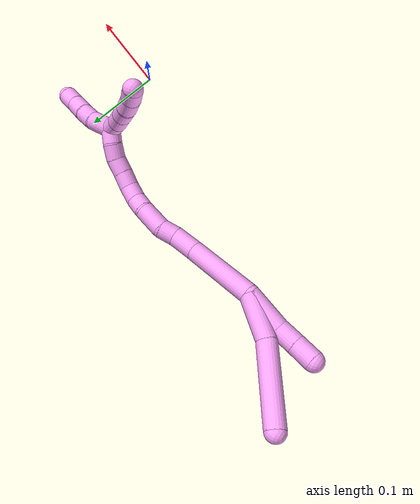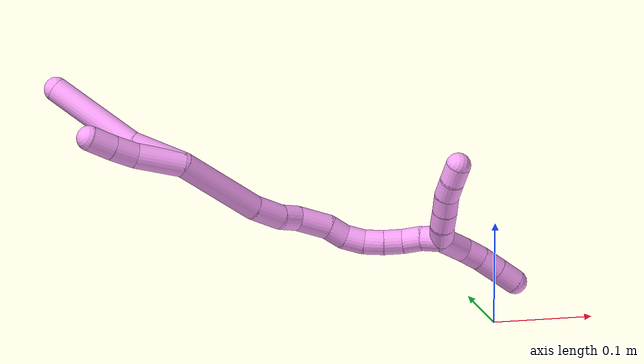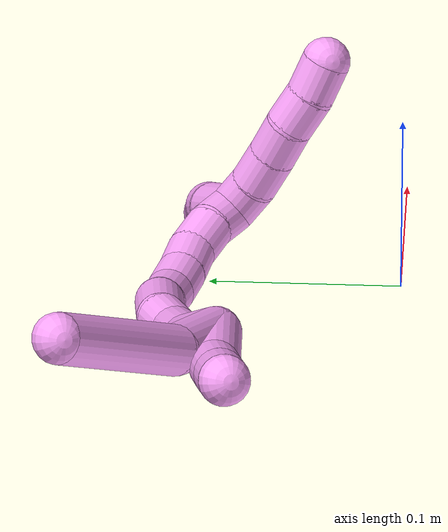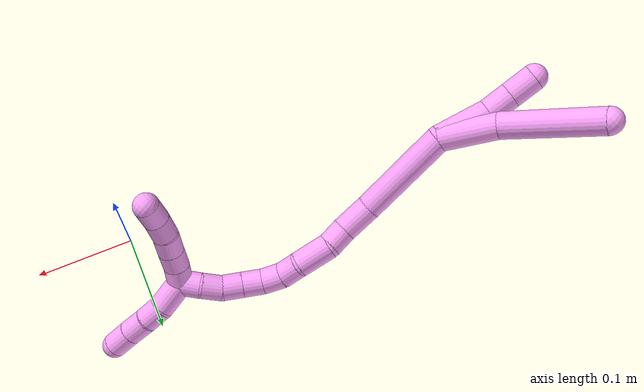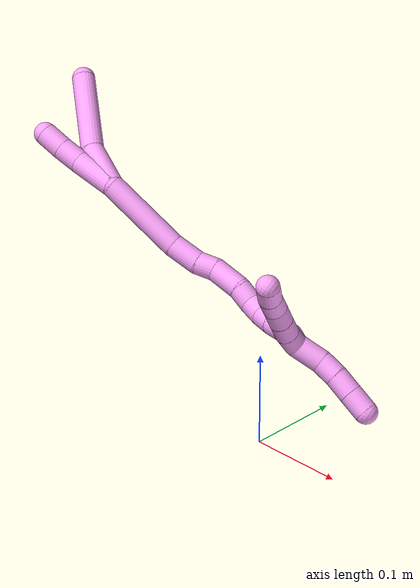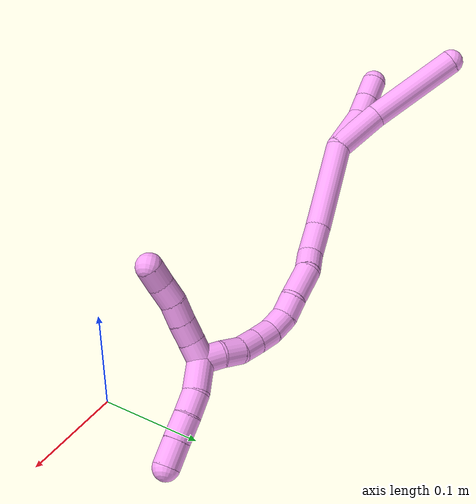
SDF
<sdf version="1.7">
 <world name="default">
  <model name="4">
   <static>0</static>
   <link name="4">
    <collision name="collision-cylinder-e_1_2_8">
     <pose>-0.013493 0.00963 0.021498 -0.421159 -0.520164 0.113638</pose>
     <geometry><cylinder><radius>0.0125</radius><length>0.054294</length></cylinder></geometry>
     <surface>
      <friction><ode><mu>1.16</mu><mu2>1.16</mu2><slip1>0</slip1><slip2>0</slip2></ode></friction>
      <contact><ode><kp>1e+06</kp><kd>1</kd><max_vel>0</max_vel><min_depth>0.001</min_depth></ode></contact>
     </surface>
    </collision>
    <visual name="visual-cylinder-e_1_2_8">
     <pose>-0.013493 0.00963 0.021498 -0.421159 -0.520164 0.113638</pose>
     <geometry><cylinder><radius>0.0125</radius><length>0.054294</length></cylinder></geometry>
     <material><ambient>1 0.65098 0.996078 1</ambient></material>
    </visual>
    <collision name="collision-cylinder-e_2_8_6">
     <pose>-0.049553 0.048992 0.072941 -0.781823 -0.491098 0.20583</pose>
     <geometry><cylinder><radius>0.0125</radius><length>0.095706</length></cylinder></geometry>
     <surface>
      <friction><ode><mu>1.16</mu><mu2>1.16</mu2><slip1>0</slip1><slip2>0</slip2></ode></friction>
      <contact><ode><kp>1e+06</kp><kd>1</kd><max_vel>0</max_vel><min_depth>0.001</min_depth></ode></contact>
     </surface>
    </collision>
    <visual name="visual-cylinder-e_2_8_6">
     <pose>-0.049553 0.048992 0.072941 -0.781823 -0.491098 0.20583</pose>
     <geometry><cylinder><radius>0.0125</radius><length>0.095706</length></cylinder></geometry>
     <material><ambient>1 0.65098 0.996078 1</ambient></material>
    </visual>
    <collision name="collision-cylinder-e_1_2_9">
     <pose>-0.009192 0.000614 0.022839 -0.026884 -0.382525 0.005206</pose>
     <geometry><cylinder><radius>0.0125</radius><length>0.049254</length></cylinder></geometry>
     <surface>
      <friction><ode><mu>1.16</mu><mu2>1.16</mu2><slip1>0</slip1><slip2>0</slip2></ode></friction>
      <contact><ode><kp>1e+06</kp><kd>1</kd><max_vel>0</max_vel><min_depth>0.001</min_depth></ode></contact>
     </surface>
    </collision>
    <visual name="visual-cylinder-e_1_2_9">
     <pose>-0.009192 0.000614 0.022839 -0.026884 -0.382525 0.005206</pose>
     <geometry><cylinder><radius>0.0125</radius><length>0.049254</length></cylinder></geometry>
     <material><ambient>1 0.65098 0.996078 1</ambient></material>
    </visual>
    <collision name="collision-cylinder-e_2_9_10">
     <pose>-0.020671 0.00203 0.057947 -0.065266 -0.183824 0.006018</pose>
     <geometry><cylinder><radius>0.0125</radius><length>0.025012</length></cylinder></geometry>
     <surface>
      <friction><ode><mu>1.16</mu><mu2>1.16</mu2><slip1>0</slip1><slip2>0</slip2></ode></friction>
      <contact><ode><kp>1e+06</kp><kd>1</kd><max_vel>0</max_vel><min_depth>0.001</min_depth></ode></contact>
     </surface>
    </collision>
    <visual name="visual-cylinder-e_2_9_10">
     <pose>-0.020671 0.00203 0.057947 -0.065266 -0.183824 0.006018</pose>
     <geometry><cylinder><radius>0.0125</radius><length>0.025012</length></cylinder></geometry>
     <material><ambient>1 0.65098 0.996078 1</ambient></material>
    </visual>
    <collision name="collision-cylinder-e_3_10_5">
     <pose>-0.025022 0.004336 0.082827 -0.118677 -0.161169 0.009596</pose>
     <geometry><cylinder><radius>0.0125</radius><length>0.025733</length></cylinder></geometry>
     <surface>
      <friction><ode><mu>1.16</mu><mu2>1.16</mu2><slip1>0</slip1><slip2>0</slip2></ode></friction>
      <contact><ode><kp>1e+06</kp><kd>1</kd><max_vel>0</max_vel><min_depth>0.001</min_depth></ode></contact>
     </surface>
    </collision>
    <visual name="visual-cylinder-e_3_10_5">
     <pose>-0.025022 0.004336 0.082827 -0.118677 -0.161169 0.009596</pose>
     <geometry><cylinder><radius>0.0125</radius><length>0.025733</length></cylinder></geometry>
     <material><ambient>1 0.65098 0.996078 1</ambient></material>
    </visual>
    <collision name="collision-cylinder-e_1_2_11">
     <pose>0.000242 -0.007991 -0.045196 2.96659 0.005283 0.0602</pose>
     <geometry><cylinder><radius>0.0125</radius><length>0.091796</length></cylinder></geometry>
     <surface>
      <friction><ode><mu>1.16</mu><mu2>1.16</mu2><slip1>0</slip1><slip2>0</slip2></ode></friction>
      <contact><ode><kp>1e+06</kp><kd>1</kd><max_vel>0</max_vel><min_depth>0.001</min_depth></ode></contact>
     </surface>
    </collision>
    <visual name="visual-cylinder-e_1_2_11">
     <pose>0.000242 -0.007991 -0.045196 2.96659 0.005283 0.0602</pose>
     <geometry><cylinder><radius>0.0125</radius><length>0.091796</length></cylinder></geometry>
     <material><ambient>1 0.65098 0.996078 1</ambient></material>
    </visual>
    <collision name="collision-cylinder-e_2_11_12">
     <pose>0.002079 -0.016444 -0.106321 3.11265 0.099706 2.57692</pose>
     <geometry><cylinder><radius>0.0125</radius><length>0.03203</length></cylinder></geometry>
     <surface>
      <friction><ode><mu>1.16</mu><mu2>1.16</mu2><slip1>0</slip1><slip2>0</slip2></ode></friction>
      <contact><ode><kp>1e+06</kp><kd>1</kd><max_vel>0</max_vel><min_depth>0.001</min_depth></ode></contact>
     </surface>
    </collision>
    <visual name="visual-cylinder-e_2_11_12">
     <pose>0.002079 -0.016444 -0.106321 3.11265 0.099706 2.57692</pose>
     <geometry><cylinder><radius>0.0125</radius><length>0.03203</length></cylinder></geometry>
     <material><ambient>1 0.65098 0.996078 1</ambient></material>
    </visual>
    <collision name="collision-cylinder-e_3_12_13">
     <pose>0.004931 -0.014514 -0.132384 -2.90991 0.120243 -0.954789</pose>
     <geometry><cylinder><radius>0.0125</radius><length>0.020976</length></cylinder></geometry>
     <surface>
      <friction><ode><mu>1.16</mu><mu2>1.16</mu2><slip1>0</slip1><slip2>0</slip2></ode></friction>
      <contact><ode><kp>1e+06</kp><kd>1</kd><max_vel>0</max_vel><min_depth>0.001</min_depth></ode></contact>
     </surface>
    </collision>
    <visual name="visual-cylinder-e_3_12_13">
     <pose>0.004931 -0.014514 -0.132384 -2.90991 0.120243 -0.954789</pose>
     <geometry><cylinder><radius>0.0125</radius><length>0.020976</length></cylinder></geometry>
     <material><ambient>1 0.65098 0.996078 1</ambient></material>
    </visual>
    <collision name="collision-cylinder-e_4_13_14">
     <pose>0.010915 -0.013197 -0.158852 3.07597 0.281056 2.68561</pose>
     <geometry><cylinder><radius>0.0125</radius><length>0.034076</length></cylinder></geometry>
     <surface>
      <friction><ode><mu>1.16</mu><mu2>1.16</mu2><slip1>0</slip1><slip2>0</slip2></ode></friction>
      <contact><ode><kp>1e+06</kp><kd>1</kd><max_vel>0</max_vel><min_depth>0.001</min_depth></ode></contact>
     </surface>
    </collision>
    <visual name="visual-cylinder-e_4_13_14">
     <pose>0.010915 -0.013197 -0.158852 3.07597 0.281056 2.68561</pose>
     <geometry><cylinder><radius>0.0125</radius><length>0.034076</length></cylinder></geometry>
     <material><ambient>1 0.65098 0.996078 1</ambient></material>
    </visual>
    <collision name="collision-cylinder-e_5_14_15">
     <pose>0.017169 -0.017259 -0.184791 2.83988 0.150769 0.922263</pose>
     <geometry><cylinder><radius>0.0125</radius><length>0.020349</length></cylinder></geometry>
     <surface>
      <friction><ode><mu>1.16</mu><mu2>1.16</mu2><slip1>0</slip1><slip2>0</slip2></ode></friction>
      <contact><ode><kp>1e+06</kp><kd>1</kd><max_vel>0</max_vel><min_depth>0.001</min_depth></ode></contact>
     </surface>
    </collision>
    <visual name="visual-cylinder-e_5_14_15">
     <pose>0.017169 -0.017259 -0.184791 2.83988 0.150769 0.922263</pose>
     <geometry><cylinder><radius>0.0125</radius><length>0.020349</length></cylinder></geometry>
     <material><ambient>1 0.65098 0.996078 1</ambient></material>
    </visual>
    <collision name="collision-cylinder-e_6_15_16">
     <pose>0.023464 -0.022089 -0.203204 2.93556 0.487136 2.35312</pose>
     <geometry><cylinder><radius>0.0125</radius><length>0.020367</length></cylinder></geometry>
     <surface>
      <friction><ode><mu>1.16</mu><mu2>1.16</mu2><slip1>0</slip1><slip2>0</slip2></ode></friction>
      <contact><ode><kp>1e+06</kp><kd>1</kd><max_vel>0</max_vel><min_depth>0.001</min_depth></ode></contact>
     </surface>
    </collision>
    <visual name="visual-cylinder-e_6_15_16">
     <pose>0.023464 -0.022089 -0.203204 2.93556 0.487136 2.35312</pose>
     <geometry><cylinder><radius>0.0125</radius><length>0.020367</length></cylinder></geometry>
     <material><ambient>1 0.65098 0.996078 1</ambient></material>
    </visual>
    <collision name="collision-cylinder-e_7_16_17">
     <pose>0.034921 -0.024473 -0.219594 3.07014 0.72172 2.95274</pose>
     <geometry><cylinder><radius>0.0125</radius><length>0.020251</length></cylinder></geometry>
     <surface>
      <friction><ode><mu>1.16</mu><mu2>1.16</mu2><slip1>0</slip1><slip2>0</slip2></ode></friction>
      <contact><ode><kp>1e+06</kp><kd>1</kd><max_vel>0</max_vel><min_depth>0.001</min_depth></ode></contact>
     </surface>
    </collision>
    <visual name="visual-cylinder-e_7_16_17">
     <pose>0.034921 -0.024473 -0.219594 3.07014 0.72172 2.95274</pose>
     <geometry><cylinder><radius>0.0125</radius><length>0.020251</length></cylinder></geometry>
     <material><ambient>1 0.65098 0.996078 1</ambient></material>
    </visual>
    <collision name="collision-cylinder-e_8_17_18">
     <pose>0.048503 -0.0246 -0.234417 -3.08423 0.759908 -2.99816</pose>
     <geometry><cylinder><radius>0.0125</radius><length>0.020012</length></cylinder></geometry>
     <surface>
      <friction><ode><mu>1.16</mu><mu2>1.16</mu2><slip1>0</slip1><slip2>0</slip2></ode></friction>
      <contact><ode><kp>1e+06</kp><kd>1</kd><max_vel>0</max_vel><min_depth>0.001</min_depth></ode></contact>
     </surface>
    </collision>
    <visual name="visual-cylinder-e_8_17_18">
     <pose>0.048503 -0.0246 -0.234417 -3.08423 0.759908 -2.99816</pose>
     <geometry><cylinder><radius>0.0125</radius><length>0.020012</length></cylinder></geometry>
     <material><ambient>1 0.65098 0.996078 1</ambient></material>
    </visual>
    <collision name="collision-cylinder-e_9_18_19">
     <pose>0.064098 -0.0243 -0.246675 3.11855 1.04775 3.10172</pose>
     <geometry><cylinder><radius>0.0125</radius><length>0.02009</length></cylinder></geometry>
     <surface>
      <friction><ode><mu>1.16</mu><mu2>1.16</mu2><slip1>0</slip1><slip2>0</slip2></ode></friction>
      <contact><ode><kp>1e+06</kp><kd>1</kd><max_vel>0</max_vel><min_depth>0.001</min_depth></ode></contact>
     </surface>
    </collision>
    <visual name="visual-cylinder-e_9_18_19">
     <pose>0.064098 -0.0243 -0.246675 3.11855 1.04775 3.10172</pose>
     <geometry><cylinder><radius>0.0125</radius><length>0.02009</length></cylinder></geometry>
     <material><ambient>1 0.65098 0.996078 1</ambient></material>
    </visual>
    <collision name="collision-cylinder-e_10_19_1">
     <pose>0.080999 -0.026656 -0.25701 2.74281 0.957461 2.399</pose>
     <geometry><cylinder><radius>0.0125</radius><length>0.020054</length></cylinder></geometry>
     <surface>
      <friction><ode><mu>1.16</mu><mu2>1.16</mu2><slip1>0</slip1><slip2>0</slip2></ode></friction>
      <contact><ode><kp>1e+06</kp><kd>1</kd><max_vel>0</max_vel><min_depth>0.001</min_depth></ode></contact>
     </surface>
    </collision>
    <visual name="visual-cylinder-e_10_19_1">
     <pose>0.080999 -0.026656 -0.25701 2.74281 0.957461 2.399</pose>
     <geometry><cylinder><radius>0.0125</radius><length>0.020054</length></cylinder></geometry>
     <material><ambient>1 0.65098 0.996078 1</ambient></material>
    </visual>
    <collision name="collision-cylinder-e_1_1_20">
     <pose>0.088443 -0.028825 -0.27795 -3.13697 -0.048326 2.95083</pose>
     <geometry><cylinder><radius>0.0125</radius><length>0.031279</length></cylinder></geometry>
     <surface>
      <friction><ode><mu>1.16</mu><mu2>1.16</mu2><slip1>0</slip1><slip2>0</slip2></ode></friction>
      <contact><ode><kp>1e+06</kp><kd>1</kd><max_vel>0</max_vel><min_depth>0.001</min_depth></ode></contact>
     </surface>
    </collision>
    <visual name="visual-cylinder-e_1_1_20">
     <pose>0.088443 -0.028825 -0.27795 -3.13697 -0.048326 2.95083</pose>
     <geometry><cylinder><radius>0.0125</radius><length>0.031279</length></cylinder></geometry>
     <material><ambient>1 0.65098 0.996078 1</ambient></material>
    </visual>
    <collision name="collision-cylinder-e_2_20_21">
     <pose>0.08877 -0.030536 -0.303979 2.97189 0.102117 1.08204</pose>
     <geometry><cylinder><radius>0.0125</radius><length>0.021229</length></cylinder></geometry>
     <surface>
      <friction><ode><mu>1.16</mu><mu2>1.16</mu2><slip1>0</slip1><slip2>0</slip2></ode></friction>
      <contact><ode><kp>1e+06</kp><kd>1</kd><max_vel>0</max_vel><min_depth>0.001</min_depth></ode></contact>
     </surface>
    </collision>
    <visual name="visual-cylinder-e_2_20_21">
     <pose>0.08877 -0.030536 -0.303979 2.97189 0.102117 1.08204</pose>
     <geometry><cylinder><radius>0.0125</radius><length>0.021229</length></cylinder></geometry>
     <material><ambient>1 0.65098 0.996078 1</ambient></material>
    </visual>
    <collision name="collision-cylinder-e_3_21_22">
     <pose>0.090955 -0.035631 -0.325544 2.85312 0.094507 0.629501</pose>
     <geometry><cylinder><radius>0.0125</radius><length>0.023383</length></cylinder></geometry>
     <surface>
      <friction><ode><mu>1.16</mu><mu2>1.16</mu2><slip1>0</slip1><slip2>0</slip2></ode></friction>
      <contact><ode><kp>1e+06</kp><kd>1</kd><max_vel>0</max_vel><min_depth>0.001</min_depth></ode></contact>
     </surface>
    </collision>
    <visual name="visual-cylinder-e_3_21_22">
     <pose>0.090955 -0.035631 -0.325544 2.85312 0.094507 0.629501</pose>
     <geometry><cylinder><radius>0.0125</radius><length>0.023383</length></cylinder></geometry>
     <material><ambient>1 0.65098 0.996078 1</ambient></material>
    </visual>
    <collision name="collision-cylinder-e_4_22_4">
     <pose>0.092912 -0.042275 -0.348256 2.86071 0.070854 0.491281</pose>
     <geometry><cylinder><radius>0.0125</radius><length>0.024109</length></cylinder></geometry>
     <surface>
      <friction><ode><mu>1.16</mu><mu2>1.16</mu2><slip1>0</slip1><slip2>0</slip2></ode></friction>
      <contact><ode><kp>1e+06</kp><kd>1</kd><max_vel>0</max_vel><min_depth>0.001</min_depth></ode></contact>
     </surface>
    </collision>
    <visual name="visual-cylinder-e_4_22_4">
     <pose>0.092912 -0.042275 -0.348256 2.86071 0.070854 0.491281</pose>
     <geometry><cylinder><radius>0.0125</radius><length>0.024109</length></cylinder></geometry>
     <material><ambient>1 0.65098 0.996078 1</ambient></material>
    </visual>
    <collision name="collision-cylinder-e_1_1_23">
     <pose>0.096608 -0.02665 -0.256 -0.341233 0.834492 -0.152449</pose>
     <geometry><cylinder><radius>0.0125</radius><length>0.02</length></cylinder></geometry>
     <surface>
      <friction><ode><mu>1.16</mu><mu2>1.16</mu2><slip1>0</slip1><slip2>0</slip2></ode></friction>
      <contact><ode><kp>1e+06</kp><kd>1</kd><max_vel>0</max_vel><min_depth>0.001</min_depth></ode></contact>
     </surface>
    </collision>
    <visual name="visual-cylinder-e_1_1_23">
     <pose>0.096608 -0.02665 -0.256 -0.341233 0.834492 -0.152449</pose>
     <geometry><cylinder><radius>0.0125</radius><length>0.02</length></cylinder></geometry>
     <material><ambient>1 0.65098 0.996078 1</ambient></material>
    </visual>
    <collision name="collision-cylinder-e_2_23_24">
     <pose>0.111731 -0.021045 -0.244265 -0.555634 0.880921 -0.267245</pose>
     <geometry><cylinder><radius>0.0125</radius><length>0.02</length></cylinder></geometry>
     <surface>
      <friction><ode><mu>1.16</mu><mu2>1.16</mu2><slip1>0</slip1><slip2>0</slip2></ode></friction>
      <contact><ode><kp>1e+06</kp><kd>1</kd><max_vel>0</max_vel><min_depth>0.001</min_depth></ode></contact>
     </surface>
    </collision>
    <visual name="visual-cylinder-e_2_23_24">
     <pose>0.111731 -0.021045 -0.244265 -0.555634 0.880921 -0.267245</pose>
     <geometry><cylinder><radius>0.0125</radius><length>0.02</length></cylinder></geometry>
     <material><ambient>1 0.65098 0.996078 1</ambient></material>
    </visual>
    <collision name="collision-cylinder-e_3_24_25">
     <pose>0.126887 -0.013958 -0.233318 -0.592694 0.839494 -0.270858</pose>
     <geometry><cylinder><radius>0.0125</radius><length>0.02</length></cylinder></geometry>
     <surface>
      <friction><ode><mu>1.16</mu><mu2>1.16</mu2><slip1>0</slip1><slip2>0</slip2></ode></friction>
      <contact><ode><kp>1e+06</kp><kd>1</kd><max_vel>0</max_vel><min_depth>0.001</min_depth></ode></contact>
     </surface>
    </collision>
    <visual name="visual-cylinder-e_3_24_25">
     <pose>0.126887 -0.013958 -0.233318 -0.592694 0.839494 -0.270858</pose>
     <geometry><cylinder><radius>0.0125</radius><length>0.02</length></cylinder></geometry>
     <material><ambient>1 0.65098 0.996078 1</ambient></material>
    </visual>
    <collision name="collision-cylinder-e_4_25_26">
     <pose>0.14287 -0.007336 -0.223453 -0.589086 1.02355 -0.337554</pose>
     <geometry><cylinder><radius>0.0125</radius><length>0.02</length></cylinder></geometry>
     <surface>
      <friction><ode><mu>1.16</mu><mu2>1.16</mu2><slip1>0</slip1><slip2>0</slip2></ode></friction>
      <contact><ode><kp>1e+06</kp><kd>1</kd><max_vel>0</max_vel><min_depth>0.001</min_depth></ode></contact>
     </surface>
    </collision>
    <visual name="visual-cylinder-e_4_25_26">
     <pose>0.14287 -0.007336 -0.223453 -0.589086 1.02355 -0.337554</pose>
     <geometry><cylinder><radius>0.0125</radius><length>0.02</length></cylinder></geometry>
     <material><ambient>1 0.65098 0.996078 1</ambient></material>
    </visual>
    <collision name="collision-cylinder-e_5_26_3">
     <pose>0.159764 -0.000208 -0.215626 -0.880393 0.988907 -0.497362</pose>
     <geometry><cylinder><radius>0.0125</radius><length>0.02</length></cylinder></geometry>
     <surface>
      <friction><ode><mu>1.16</mu><mu2>1.16</mu2><slip1>0</slip1><slip2>0</slip2></ode></friction>
      <contact><ode><kp>1e+06</kp><kd>1</kd><max_vel>0</max_vel><min_depth>0.001</min_depth></ode></contact>
     </surface>
    </collision>
    <visual name="visual-cylinder-e_5_26_3">
     <pose>0.159764 -0.000208 -0.215626 -0.880393 0.988907 -0.497362</pose>
     <geometry><cylinder><radius>0.0125</radius><length>0.02</length></cylinder></geometry>
     <material><ambient>1 0.65098 0.996078 1</ambient></material>
    </visual>
    <collision name="collision-sphere-3">
     <pose>0.168118 0.00403 -0.212126 0 -0 0</pose>
     <geometry><sphere><radius>0.0125</radius></sphere></geometry>
     <surface>
      <friction><ode><mu>1.16</mu><mu2>1.16</mu2><slip1>0</slip1><slip2>0</slip2></ode></friction>
      <contact><ode><kp>1e+06</kp><kd>1</kd><max_vel>0</max_vel><min_depth>0.001</min_depth></ode></contact>
     </surface>
    </collision>
    <visual name="visual-sphere-3">
     <pose>0.168118 0.00403 -0.212126 0 -0 0</pose>
     <geometry><sphere><radius>0.0125</radius></sphere></geometry>
     <material><ambient>1 0.65098 0.996078 1</ambient></material>
    </visual>
    <collision name="collision-sphere-26">
     <pose>0.151409 -0.004445 -0.219126 0 -0 0</pose>
     <geometry><sphere><radius>0.0125</radius></sphere></geometry>
     <surface>
      <friction><ode><mu>1.16</mu><mu2>1.16</mu2><slip1>0</slip1><slip2>0</slip2></ode></friction>
      <contact><ode><kp>1e+06</kp><kd>1</kd><max_vel>0</max_vel><min_depth>0.001</min_depth></ode></contact>
     </surface>
    </collision>
    <visual name="visual-sphere-26">
     <pose>0.151409 -0.004445 -0.219126 0 -0 0</pose>
     <geometry><sphere><radius>0.0125</radius></sphere></geometry>
     <material><ambient>1 0.65098 0.996078 1</ambient></material>
    </visual>
    <collision name="collision-sphere-25">
     <pose>0.13433 -0.010227 -0.227779 0 -0 0</pose>
     <geometry><sphere><radius>0.0125</radius></sphere></geometry>
     <surface>
      <friction><ode><mu>1.16</mu><mu2>1.16</mu2><slip1>0</slip1><slip2>0</slip2></ode></friction>
      <contact><ode><kp>1e+06</kp><kd>1</kd><max_vel>0</max_vel><min_depth>0.001</min_depth></ode></contact>
     </surface>
    </collision>
    <visual name="visual-sphere-25">
     <pose>0.13433 -0.010227 -0.227779 0 -0 0</pose>
     <geometry><sphere><radius>0.0125</radius></sphere></geometry>
     <material><ambient>1 0.65098 0.996078 1</ambient></material>
    </visual>
    <collision name="collision-sphere-24">
     <pose>0.119444 -0.017688 -0.238858 0 -0 0</pose>
     <geometry><sphere><radius>0.0125</radius></sphere></geometry>
     <surface>
      <friction><ode><mu>1.16</mu><mu2>1.16</mu2><slip1>0</slip1><slip2>0</slip2></ode></friction>
      <contact><ode><kp>1e+06</kp><kd>1</kd><max_vel>0</max_vel><min_depth>0.001</min_depth></ode></contact>
     </surface>
    </collision>
    <visual name="visual-sphere-24">
     <pose>0.119444 -0.017688 -0.238858 0 -0 0</pose>
     <geometry><sphere><radius>0.0125</radius></sphere></geometry>
     <material><ambient>1 0.65098 0.996078 1</ambient></material>
    </visual>
    <collision name="collision-sphere-23">
     <pose>0.104018 -0.024402 -0.249672 0 -0 0</pose>
     <geometry><sphere><radius>0.0125</radius></sphere></geometry>
     <surface>
      <friction><ode><mu>1.16</mu><mu2>1.16</mu2><slip1>0</slip1><slip2>0</slip2></ode></friction>
      <contact><ode><kp>1e+06</kp><kd>1</kd><max_vel>0</max_vel><min_depth>0.001</min_depth></ode></contact>
     </surface>
    </collision>
    <visual name="visual-sphere-23">
     <pose>0.104018 -0.024402 -0.249672 0 -0 0</pose>
     <geometry><sphere><radius>0.0125</radius></sphere></geometry>
     <material><ambient>1 0.65098 0.996078 1</ambient></material>
    </visual>
    <collision name="collision-sphere-4">
     <pose>0.093765 -0.045608 -0.359808 0 -0 0</pose>
     <geometry><sphere><radius>0.0125</radius></sphere></geometry>
     <surface>
      <friction><ode><mu>1.16</mu><mu2>1.16</mu2><slip1>0</slip1><slip2>0</slip2></ode></friction>
      <contact><ode><kp>1e+06</kp><kd>1</kd><max_vel>0</max_vel><min_depth>0.001</min_depth></ode></contact>
     </surface>
    </collision>
    <visual name="visual-sphere-4">
     <pose>0.093765 -0.045608 -0.359808 0 -0 0</pose>
     <geometry><sphere><radius>0.0125</radius></sphere></geometry>
     <material><ambient>1 0.65098 0.996078 1</ambient></material>
    </visual>
    <collision name="collision-sphere-22">
     <pose>0.092058 -0.038942 -0.336703 0 -0 0</pose>
     <geometry><sphere><radius>0.0125</radius></sphere></geometry>
     <surface>
      <friction><ode><mu>1.16</mu><mu2>1.16</mu2><slip1>0</slip1><slip2>0</slip2></ode></friction>
      <contact><ode><kp>1e+06</kp><kd>1</kd><max_vel>0</max_vel><min_depth>0.001</min_depth></ode></contact>
     </surface>
    </collision>
    <visual name="visual-sphere-22">
     <pose>0.092058 -0.038942 -0.336703 0 -0 0</pose>
     <geometry><sphere><radius>0.0125</radius></sphere></geometry>
     <material><ambient>1 0.65098 0.996078 1</ambient></material>
    </visual>
    <collision name="collision-sphere-21">
     <pose>0.089852 -0.032319 -0.314386 0 -0 0</pose>
     <geometry><sphere><radius>0.0125</radius></sphere></geometry>
     <surface>
      <friction><ode><mu>1.16</mu><mu2>1.16</mu2><slip1>0</slip1><slip2>0</slip2></ode></friction>
      <contact><ode><kp>1e+06</kp><kd>1</kd><max_vel>0</max_vel><min_depth>0.001</min_depth></ode></contact>
     </surface>
    </collision>
    <visual name="visual-sphere-21">
     <pose>0.089852 -0.032319 -0.314386 0 -0 0</pose>
     <geometry><sphere><radius>0.0125</radius></sphere></geometry>
     <material><ambient>1 0.65098 0.996078 1</ambient></material>
    </visual>
    <collision name="collision-sphere-20">
     <pose>0.087687 -0.028753 -0.293571 0 -0 0</pose>
     <geometry><sphere><radius>0.0125</radius></sphere></geometry>
     <surface>
      <friction><ode><mu>1.16</mu><mu2>1.16</mu2><slip1>0</slip1><slip2>0</slip2></ode></friction>
      <contact><ode><kp>1e+06</kp><kd>1</kd><max_vel>0</max_vel><min_depth>0.001</min_depth></ode></contact>
     </surface>
    </collision>
    <visual name="visual-sphere-20">
     <pose>0.087687 -0.028753 -0.293571 0 -0 0</pose>
     <geometry><sphere><radius>0.0125</radius></sphere></geometry>
     <material><ambient>1 0.65098 0.996078 1</ambient></material>
    </visual>
    <collision name="collision-sphere-5">
     <pose>-0.027086 0.005839 0.095438 0 -0 0</pose>
     <geometry><sphere><radius>0.0125</radius></sphere></geometry>
     <surface>
      <friction><ode><mu>1.16</mu><mu2>1.16</mu2><slip1>0</slip1><slip2>0</slip2></ode></friction>
      <contact><ode><kp>1e+06</kp><kd>1</kd><max_vel>0</max_vel><min_depth>0.001</min_depth></ode></contact>
     </surface>
    </collision>
    <visual name="visual-sphere-5">
     <pose>-0.027086 0.005839 0.095438 0 -0 0</pose>
     <geometry><sphere><radius>0.0125</radius></sphere></geometry>
     <material><ambient>1 0.65098 0.996078 1</ambient></material>
    </visual>
    <collision name="collision-sphere-10">
     <pose>-0.022957 0.002832 0.070216 0 -0 0</pose>
     <geometry><sphere><radius>0.0125</radius></sphere></geometry>
     <surface>
      <friction><ode><mu>1.16</mu><mu2>1.16</mu2><slip1>0</slip1><slip2>0</slip2></ode></friction>
      <contact><ode><kp>1e+06</kp><kd>1</kd><max_vel>0</max_vel><min_depth>0.001</min_depth></ode></contact>
     </surface>
    </collision>
    <visual name="visual-sphere-10">
     <pose>-0.022957 0.002832 0.070216 0 -0 0</pose>
     <geometry><sphere><radius>0.0125</radius></sphere></geometry>
     <material><ambient>1 0.65098 0.996078 1</ambient></material>
    </visual>
    <collision name="collision-sphere-6">
     <pose>-0.07212 0.078723 0.102885 0 -0 0</pose>
     <geometry><sphere><radius>0.0125</radius></sphere></geometry>
     <surface>
      <friction><ode><mu>1.16</mu><mu2>1.16</mu2><slip1>0</slip1><slip2>0</slip2></ode></friction>
      <contact><ode><kp>1e+06</kp><kd>1</kd><max_vel>0</max_vel><min_depth>0.001</min_depth></ode></contact>
     </surface>
    </collision>
    <visual name="visual-sphere-6">
     <pose>-0.07212 0.078723 0.102885 0 -0 0</pose>
     <geometry><sphere><radius>0.0125</radius></sphere></geometry>
     <material><ambient>1 0.65098 0.996078 1</ambient></material>
    </visual>
    <collision name="collision-sphere-9">
     <pose>-0.018385 0.001228 0.045678 0 -0 0</pose>
     <geometry><sphere><radius>0.0125</radius></sphere></geometry>
     <surface>
      <friction><ode><mu>1.16</mu><mu2>1.16</mu2><slip1>0</slip1><slip2>0</slip2></ode></friction>
      <contact><ode><kp>1e+06</kp><kd>1</kd><max_vel>0</max_vel><min_depth>0.001</min_depth></ode></contact>
     </surface>
    </collision>
    <visual name="visual-sphere-9">
     <pose>-0.018385 0.001228 0.045678 0 -0 0</pose>
     <geometry><sphere><radius>0.0125</radius></sphere></geometry>
     <material><ambient>1 0.65098 0.996078 1</ambient></material>
    </visual>
    <collision name="collision-sphere-2">
     <geometry><sphere><radius>0.0125</radius></sphere></geometry>
     <surface>
      <friction><ode><mu>1.16</mu><mu2>1.16</mu2><slip1>0</slip1><slip2>0</slip2></ode></friction>
      <contact><ode><kp>1e+06</kp><kd>1</kd><max_vel>0</max_vel><min_depth>0.001</min_depth></ode></contact>
     </surface>
    </collision>
    <visual name="visual-sphere-2">
     <geometry><sphere><radius>0.0125</radius></sphere></geometry>
     <material><ambient>1 0.65098 0.996078 1</ambient></material>
    </visual>
    <collision name="collision-sphere-19">
     <pose>0.0728 -0.024415 -0.251691 0 -0 0</pose>
     <geometry><sphere><radius>0.0125</radius></sphere></geometry>
     <surface>
      <friction><ode><mu>1.16</mu><mu2>1.16</mu2><slip1>0</slip1><slip2>0</slip2></ode></friction>
      <contact><ode><kp>1e+06</kp><kd>1</kd><max_vel>0</max_vel><min_depth>0.001</min_depth></ode></contact>
     </surface>
    </collision>
    <visual name="visual-sphere-19">
     <pose>0.0728 -0.024415 -0.251691 0 -0 0</pose>
     <geometry><sphere><radius>0.0125</radius></sphere></geometry>
     <material><ambient>1 0.65098 0.996078 1</ambient></material>
    </visual>
    <collision name="collision-sphere-8">
     <pose>-0.026985 0.019261 0.042996 0 -0 0</pose>
     <geometry><sphere><radius>0.0125</radius></sphere></geometry>
     <surface>
      <friction><ode><mu>1.16</mu><mu2>1.16</mu2><slip1>0</slip1><slip2>0</slip2></ode></friction>
      <contact><ode><kp>1e+06</kp><kd>1</kd><max_vel>0</max_vel><min_depth>0.001</min_depth></ode></contact>
     </surface>
    </collision>
    <visual name="visual-sphere-8">
     <pose>-0.026985 0.019261 0.042996 0 -0 0</pose>
     <geometry><sphere><radius>0.0125</radius></sphere></geometry>
     <material><ambient>1 0.65098 0.996078 1</ambient></material>
    </visual>
    <collision name="collision-sphere-11">
     <pose>0.000485 -0.015983 -0.090393 0 -0 0</pose>
     <geometry><sphere><radius>0.0125</radius></sphere></geometry>
     <surface>
      <friction><ode><mu>1.16</mu><mu2>1.16</mu2><slip1>0</slip1><slip2>0</slip2></ode></friction>
      <contact><ode><kp>1e+06</kp><kd>1</kd><max_vel>0</max_vel><min_depth>0.001</min_depth></ode></contact>
     </surface>
    </collision>
    <visual name="visual-sphere-11">
     <pose>0.000485 -0.015983 -0.090393 0 -0 0</pose>
     <geometry><sphere><radius>0.0125</radius></sphere></geometry>
     <material><ambient>1 0.65098 0.996078 1</ambient></material>
    </visual>
    <collision name="collision-sphere-12">
     <pose>0.003673 -0.016905 -0.12225 0 -0 0</pose>
     <geometry><sphere><radius>0.0125</radius></sphere></geometry>
     <surface>
      <friction><ode><mu>1.16</mu><mu2>1.16</mu2><slip1>0</slip1><slip2>0</slip2></ode></friction>
      <contact><ode><kp>1e+06</kp><kd>1</kd><max_vel>0</max_vel><min_depth>0.001</min_depth></ode></contact>
     </surface>
    </collision>
    <visual name="visual-sphere-12">
     <pose>0.003673 -0.016905 -0.12225 0 -0 0</pose>
     <geometry><sphere><radius>0.0125</radius></sphere></geometry>
     <material><ambient>1 0.65098 0.996078 1</ambient></material>
    </visual>
    <collision name="collision-sphere-13">
     <pose>0.006189 -0.012124 -0.142518 0 -0 0</pose>
     <geometry><sphere><radius>0.0125</radius></sphere></geometry>
     <surface>
      <friction><ode><mu>1.16</mu><mu2>1.16</mu2><slip1>0</slip1><slip2>0</slip2></ode></friction>
      <contact><ode><kp>1e+06</kp><kd>1</kd><max_vel>0</max_vel><min_depth>0.001</min_depth></ode></contact>
     </surface>
    </collision>
    <visual name="visual-sphere-13">
     <pose>0.006189 -0.012124 -0.142518 0 -0 0</pose>
     <geometry><sphere><radius>0.0125</radius></sphere></geometry>
     <material><ambient>1 0.65098 0.996078 1</ambient></material>
    </visual>
    <collision name="collision-sphere-14">
     <pose>0.015641 -0.01427 -0.175186 0 -0 0</pose>
     <geometry><sphere><radius>0.0125</radius></sphere></geometry>
     <surface>
      <friction><ode><mu>1.16</mu><mu2>1.16</mu2><slip1>0</slip1><slip2>0</slip2></ode></friction>
      <contact><ode><kp>1e+06</kp><kd>1</kd><max_vel>0</max_vel><min_depth>0.001</min_depth></ode></contact>
     </surface>
    </collision>
    <visual name="visual-sphere-14">
     <pose>0.015641 -0.01427 -0.175186 0 -0 0</pose>
     <geometry><sphere><radius>0.0125</radius></sphere></geometry>
     <material><ambient>1 0.65098 0.996078 1</ambient></material>
    </visual>
    <collision name="collision-sphere-15">
     <pose>0.018697 -0.020249 -0.194395 0 -0 0</pose>
     <geometry><sphere><radius>0.0125</radius></sphere></geometry>
     <surface>
      <friction><ode><mu>1.16</mu><mu2>1.16</mu2><slip1>0</slip1><slip2>0</slip2></ode></friction>
      <contact><ode><kp>1e+06</kp><kd>1</kd><max_vel>0</max_vel><min_depth>0.001</min_depth></ode></contact>
     </surface>
    </collision>
    <visual name="visual-sphere-15">
     <pose>0.018697 -0.020249 -0.194395 0 -0 0</pose>
     <geometry><sphere><radius>0.0125</radius></sphere></geometry>
     <material><ambient>1 0.65098 0.996078 1</ambient></material>
    </visual>
    <collision name="collision-sphere-16">
     <pose>0.028231 -0.02393 -0.212012 0 -0 0</pose>
     <geometry><sphere><radius>0.0125</radius></sphere></geometry>
     <surface>
      <friction><ode><mu>1.16</mu><mu2>1.16</mu2><slip1>0</slip1><slip2>0</slip2></ode></friction>
      <contact><ode><kp>1e+06</kp><kd>1</kd><max_vel>0</max_vel><min_depth>0.001</min_depth></ode></contact>
     </surface>
    </collision>
    <visual name="visual-sphere-16">
     <pose>0.028231 -0.02393 -0.212012 0 -0 0</pose>
     <geometry><sphere><radius>0.0125</radius></sphere></geometry>
     <material><ambient>1 0.65098 0.996078 1</ambient></material>
    </visual>
    <collision name="collision-sphere-17">
     <pose>0.041611 -0.025016 -0.227176 0 -0 0</pose>
     <geometry><sphere><radius>0.0125</radius></sphere></geometry>
     <surface>
      <friction><ode><mu>1.16</mu><mu2>1.16</mu2><slip1>0</slip1><slip2>0</slip2></ode></friction>
      <contact><ode><kp>1e+06</kp><kd>1</kd><max_vel>0</max_vel><min_depth>0.001</min_depth></ode></contact>
     </surface>
    </collision>
    <visual name="visual-sphere-17">
     <pose>0.041611 -0.025016 -0.227176 0 -0 0</pose>
     <geometry><sphere><radius>0.0125</radius></sphere></geometry>
     <material><ambient>1 0.65098 0.996078 1</ambient></material>
    </visual>
    <collision name="collision-sphere-18">
     <pose>0.055396 -0.024184 -0.241659 0 -0 0</pose>
     <geometry><sphere><radius>0.0125</radius></sphere></geometry>
     <surface>
      <friction><ode><mu>1.16</mu><mu2>1.16</mu2><slip1>0</slip1><slip2>0</slip2></ode></friction>
      <contact><ode><kp>1e+06</kp><kd>1</kd><max_vel>0</max_vel><min_depth>0.001</min_depth></ode></contact>
     </surface>
    </collision>
    <visual name="visual-sphere-18">
     <pose>0.055396 -0.024184 -0.241659 0 -0 0</pose>
     <geometry><sphere><radius>0.0125</radius></sphere></geometry>
     <material><ambient>1 0.65098 0.996078 1</ambient></material>
    </visual>
    <collision name="collision-sphere-1">
     <pose>0.089198 -0.028897 -0.262328 0 -0 0</pose>
     <geometry><sphere><radius>0.0125</radius></sphere></geometry>
     <surface>
      <friction><ode><mu>1.16</mu><mu2>1.16</mu2><slip1>0</slip1><slip2>0</slip2></ode></friction>
      <contact><ode><kp>1e+06</kp><kd>1</kd><max_vel>0</max_vel><min_depth>0.001</min_depth></ode></contact>
     </surface>
    </collision>
    <visual name="visual-sphere-1">
     <pose>0.089198 -0.028897 -0.262328 0 -0 0</pose>
     <geometry><sphere><radius>0.0125</radius></sphere></geometry>
     <material><ambient>1 0.65098 0.996078 1</ambient></material>
    </visual>
    <inertial>
     <pose>0.027557 -0.005611 -0.112861 0 -0 0</pose>
     <mass>0.75</mass>
     <inertia>
      <ixx>0.000192</ixx>
      <ixy>0</ixy>
      <ixz>0</ixz>
      <iyy>7.5e-05</iyy>
      <iyz>0</iyz>
      <izz>-1.5e-05</izz>
     </inertia>
    </inertial>
   </link>
   <pose>-0.295049 0.080174 0.15595 1.03001 -0.538679 -0.900588</pose>
  </model>
 </world>
</sdf>
